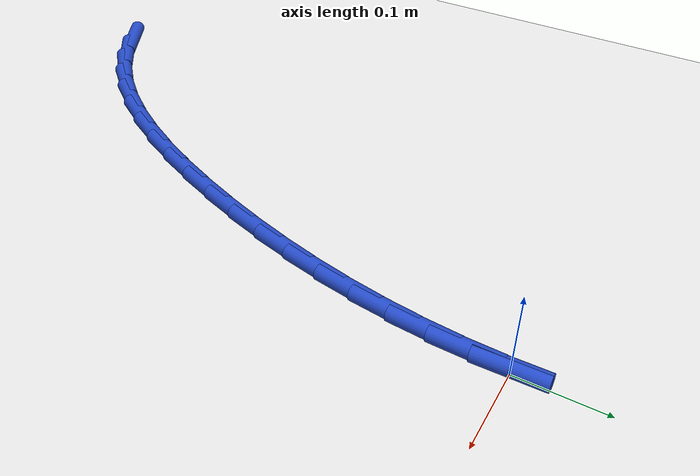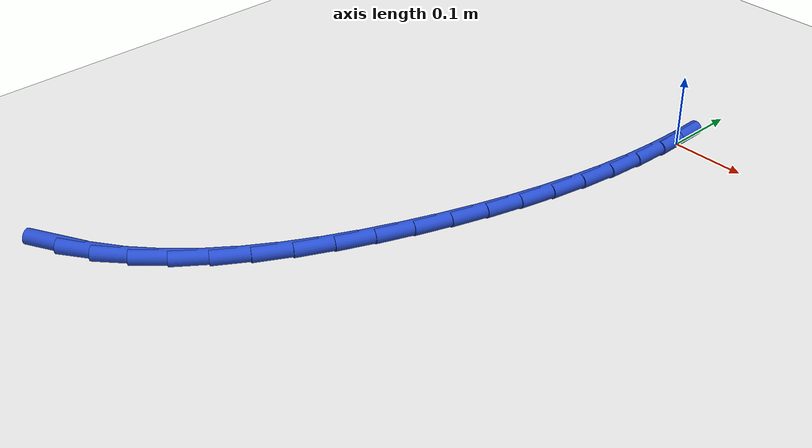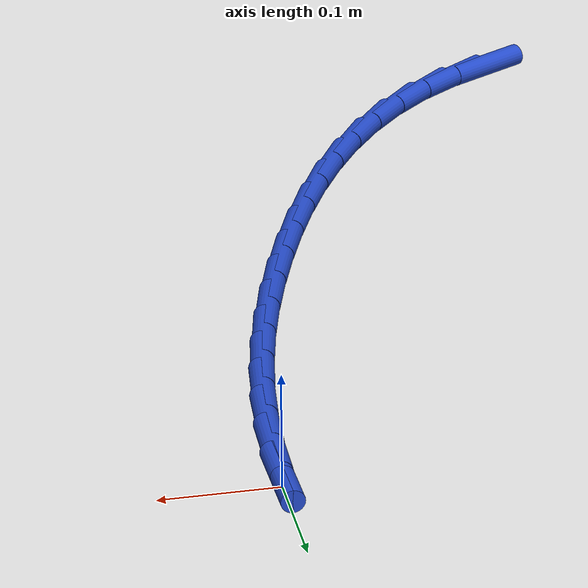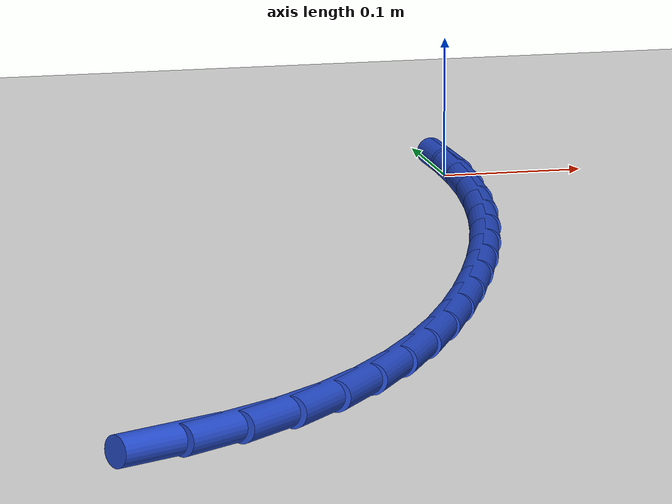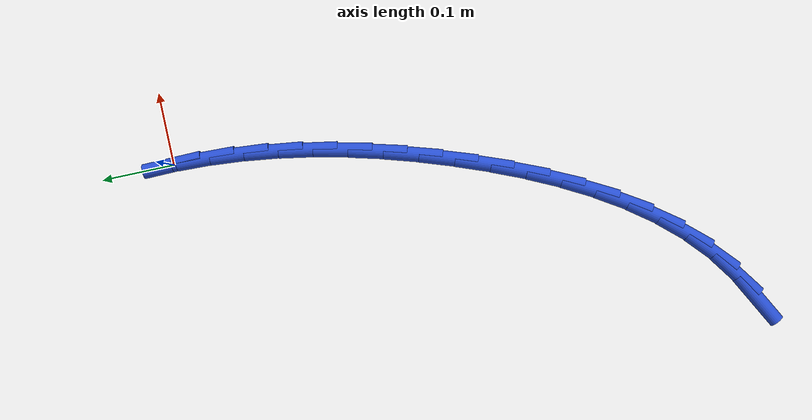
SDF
<sdf version="1.6">
 <world name="default">
  <model name="ground_plane">
   <static>1</static>
   <link name="link">
    <collision name="collision">
     <geometry><plane><normal>0 0 1</normal><size>100 100</size></plane></geometry>
     <surface><friction><ode><mu>100</mu><mu2>50</mu2></ode></friction></surface>
    </collision>
    <visual name="visual">
     <cast_shadows>0</cast_shadows>
     <geometry><plane><normal>0 0 1</normal><size>100 100</size></plane></geometry>
     <material>
      <script><uri>file://media/materials/scripts/gazebo.material</uri><name>Gazebo/WhiteGlow</name></script>
     </material>
    </visual>
   </link>
  </model>
  <model name="line">
   <link name="link_0">
    <pose>2.0816681711721685e-17 -5.551115123125783e-17 0.01 0 1.57 -1.5523088054794187</pose>
    <collision name="collision">
     <geometry><cylinder><radius>0.01</radius><length>0.08</length></cylinder></geometry>
    </collision>
    <visual name="visual">
     <material>
      <script><name>Gazebo/Blue</name><uri>file://media/materials/scripts/gazebo.material</uri></script>
     </material>
     <geometry><cylinder><radius>0.01</radius><length>0.08</length></cylinder></geometry>
    </visual>
   </link>
   <link name="link_142">
    <pose>-0.34473383791407686 -0.7361614255007828 0.01 0 1.57 0.4907348958206931</pose>
    <collision name="collision">
     <geometry><cylinder><radius>0.01</radius><length>0.08</length></cylinder></geometry>
    </collision>
    <visual name="visual">
     <material>
      <script><name>Gazebo/Blue</name><uri>file://media/materials/scripts/gazebo.material</uri></script>
     </material>
     <geometry><cylinder><radius>0.01</radius><length>0.08</length></cylinder></geometry>
    </visual>
   </link>
   <link name="link_143">
    <pose>-0.30548766036589237 -0.715190917618576 0.01 0 1.57 0.6139997040571826</pose>
    <collision name="collision">
     <geometry><cylinder><radius>0.01</radius><length>0.08</length></cylinder></geometry>
    </collision>
    <visual name="visual">
     <material>
      <script><name>Gazebo/Blue</name><uri>file://media/materials/scripts/gazebo.material</uri></script>
     </material>
     <geometry><cylinder><radius>0.01</radius><length>0.08</length></cylinder></geometry>
    </visual>
   </link>
   <link name="link_144">
    <pose>-0.26910139356400764 -0.6895426349965675 0.01 0 1.57 0.7367811838941292</pose>
    <collision name="collision">
     <geometry><cylinder><radius>0.01</radius><length>0.08</length></cylinder></geometry>
    </collision>
    <visual name="visual">
     <material>
      <script><name>Gazebo/Blue</name><uri>file://media/materials/scripts/gazebo.material</uri></script>
     </material>
     <geometry><cylinder><radius>0.01</radius><length>0.08</length></cylinder></geometry>
    </visual>
   </link>
   <link name="link_145">
    <pose>-0.23566840844505318 -0.6592120850562218 0.01 0 1.57 0.843196722444265</pose>
    <collision name="collision">
     <geometry><cylinder><radius>0.01</radius><length>0.08</length></cylinder></geometry>
    </collision>
    <visual name="visual">
     <material>
      <script><name>Gazebo/Blue</name><uri>file://media/materials/scripts/gazebo.material</uri></script>
     </material>
     <geometry><cylinder><radius>0.01</radius><length>0.08</length></cylinder></geometry>
    </visual>
   </link>
   <link name="link_146">
    <pose>-0.20502759694558262 -0.6248075544583137 0.01 0 1.57 0.933762189071692</pose>
    <collision name="collision">
     <geometry><cylinder><radius>0.01</radius><length>0.08</length></cylinder></geometry>
    </collision>
    <visual name="visual">
     <material>
      <script><name>Gazebo/Blue</name><uri>file://media/materials/scripts/gazebo.material</uri></script>
     </material>
     <geometry><cylinder><radius>0.01</radius><length>0.08</length></cylinder></geometry>
    </visual>
   </link>
   <link name="link_147">
    <pose>-0.17701350153655712 -0.586947803270928 0.01 0 1.57 1.0101198781755745</pose>
    <collision name="collision">
     <geometry><cylinder><radius>0.01</radius><length>0.08</length></cylinder></geometry>
    </collision>
    <visual name="visual">
     <material>
      <script><name>Gazebo/Blue</name><uri>file://media/materials/scripts/gazebo.material</uri></script>
     </material>
     <geometry><cylinder><radius>0.01</radius><length>0.08</length></cylinder></geometry>
    </visual>
   </link>
   <link name="link_148">
    <pose>-0.15146066468893618 -0.546251591562146 0.01 0 1.57 1.0741574007701413</pose>
    <collision name="collision">
     <geometry><cylinder><radius>0.01</radius><length>0.08</length></cylinder></geometry>
    </collision>
    <visual name="visual">
     <material>
      <script><name>Gazebo/Blue</name><uri>file://media/materials/scripts/gazebo.material</uri></script>
     </material>
     <geometry><cylinder><radius>0.01</radius><length>0.08</length></cylinder></geometry>
    </visual>
   </link>
   <link name="link_149">
    <pose>-0.12820362887367961 -0.5033376794000498 0.01 0 1.57 1.1276580409319605</pose>
    <collision name="collision">
     <geometry><cylinder><radius>0.01</radius><length>0.08</length></cylinder></geometry>
    </collision>
    <visual name="visual">
     <material>
      <script><name>Gazebo/Blue</name><uri>file://media/materials/scripts/gazebo.material</uri></script>
     </material>
     <geometry><cylinder><radius>0.01</radius><length>0.08</length></cylinder></geometry>
    </visual>
   </link>
   <link name="link_150">
    <pose>-0.10707693656174758 -0.4588248268527222 0.01 0 1.57 1.1721460808478517</pose>
    <collision name="collision">
     <geometry><cylinder><radius>0.01</radius><length>0.08</length></cylinder></geometry>
    </collision>
    <visual name="visual">
     <material>
      <script><name>Gazebo/Blue</name><uri>file://media/materials/scripts/gazebo.material</uri></script>
     </material>
     <geometry><cylinder><radius>0.01</radius><length>0.08</length></cylinder></geometry>
    </visual>
   </link>
   <link name="link_151">
    <pose>-0.08791513022409958 -0.4133317939882445 0.01 0 1.57 1.208893662913475</pose>
    <collision name="collision">
     <geometry><cylinder><radius>0.01</radius><length>0.08</length></cylinder></geometry>
    </collision>
    <visual name="visual">
     <material>
      <script><name>Gazebo/Blue</name><uri>file://media/materials/scripts/gazebo.material</uri></script>
     </material>
     <geometry><cylinder><radius>0.01</radius><length>0.08</length></cylinder></geometry>
    </visual>
   </link>
   <link name="link_152">
    <pose>-0.07055422865688127 -0.3674734403270615 0.01 0 1.57 1.242145391680138</pose>
    <collision name="collision">
     <geometry><cylinder><radius>0.01</radius><length>0.08</length></cylinder></geometry>
    </collision>
    <visual name="visual">
     <material>
      <script><name>Gazebo/Blue</name><uri>file://media/materials/scripts/gazebo.material</uri></script>
     </material>
     <geometry><cylinder><radius>0.01</radius><length>0.08</length></cylinder></geometry>
    </visual>
   </link>
   <link name="link_153">
    <pose>-0.05491996224916763 -0.32162760149705344 0.01 0 1.57 1.2774424456819216</pose>
    <collision name="collision">
     <geometry><cylinder><radius>0.01</radius><length>0.08</length></cylinder></geometry>
    </collision>
    <visual name="visual">
     <material>
      <script><name>Gazebo/Blue</name><uri>file://media/materials/scripts/gazebo.material</uri></script>
     </material>
     <geometry><cylinder><radius>0.01</radius><length>0.08</length></cylinder></geometry>
    </visual>
   </link>
   <link name="link_154">
    <pose>-0.04107776924217418 -0.2758029958486783 0.01 0 1.57 1.3152499110427764</pose>
    <collision name="collision">
     <geometry><cylinder><radius>0.01</radius><length>0.08</length></cylinder></geometry>
    </collision>
    <visual name="visual">
     <material>
      <script><name>Gazebo/Blue</name><uri>file://media/materials/scripts/gazebo.material</uri></script>
     </material>
     <geometry><cylinder><radius>0.01</radius><length>0.08</length></cylinder></geometry>
    </visual>
   </link>
   <link name="link_155">
    <pose>-0.029105182624912764 -0.22997638661813743 0.01 0 1.57 1.3555353044711596</pose>
    <collision name="collision">
     <geometry><cylinder><radius>0.01</radius><length>0.08</length></cylinder></geometry>
    </collision>
    <visual name="visual">
     <material>
      <script><name>Gazebo/Blue</name><uri>file://media/materials/scripts/gazebo.material</uri></script>
     </material>
     <geometry><cylinder><radius>0.01</radius><length>0.08</length></cylinder></geometry>
    </visual>
   </link>
   <link name="link_156">
    <pose>-0.01907973538639505 -0.1841245370416317 0.01 0 1.57 1.3982225838928344</pose>
    <collision name="collision">
     <geometry><cylinder><radius>0.01</radius><length>0.08</length></cylinder></geometry>
    </collision>
    <visual name="visual">
     <material>
      <script><name>Gazebo/Blue</name><uri>file://media/materials/scripts/gazebo.material</uri></script>
     </material>
     <geometry><cylinder><radius>0.01</radius><length>0.08</length></cylinder></geometry>
    </visual>
   </link>
   <link name="link_157">
    <pose>-0.011078960515633198 -0.13822421035536409 0.01 0 1.57 1.4431857984300132</pose>
    <collision name="collision">
     <geometry><cylinder><radius>0.01</radius><length>0.08</length></cylinder></geometry>
    </collision>
    <visual name="visual">
     <material>
      <script><name>Gazebo/Blue</name><uri>file://media/materials/scripts/gazebo.material</uri></script>
     </material>
     <geometry><cylinder><radius>0.01</radius><length>0.08</length></cylinder></geometry>
    </visual>
   </link>
   <link name="link_158">
    <pose>-0.005180391001638861 -0.09225216979553541 0.01 0 1.57 1.4902444122730711</pose>
    <collision name="collision">
     <geometry><cylinder><radius>0.01</radius><length>0.08</length></cylinder></geometry>
    </collision>
    <visual name="visual">
     <material>
      <script><name>Gazebo/Blue</name><uri>file://media/materials/scripts/gazebo.material</uri></script>
     </material>
     <geometry><cylinder><radius>0.01</radius><length>0.08</length></cylinder></geometry>
    </visual>
   </link>
   <link name="link_159">
    <pose>-0.0014615598334238493 -0.04618517859834695 0.01 0 1.57 1.5391612378080506</pose>
    <collision name="collision">
     <geometry><cylinder><radius>0.01</radius><length>0.08</length></cylinder></geometry>
    </collision>
    <visual name="visual">
     <material>
      <script><name>Gazebo/Blue</name><uri>file://media/materials/scripts/gazebo.material</uri></script>
     </material>
     <geometry><cylinder><radius>0.01</radius><length>0.08</length></cylinder></geometry>
    </visual>
   </link>
   <link name="link_160">
    <pose>1.214306433183765e-17 -2.220446049250313e-16 0.01 0 1.57 -1.55194881725671</pose>
    <collision name="collision">
     <geometry><cylinder><radius>0.01</radius><length>0.08</length></cylinder></geometry>
    </collision>
    <visual name="visual">
     <material>
      <script><name>Gazebo/Blue</name><uri>file://media/materials/scripts/gazebo.material</uri></script>
     </material>
     <geometry><cylinder><radius>0.01</radius><length>0.08</length></cylinder></geometry>
    </visual>
   </link>
  </model>
 </world>
</sdf>
